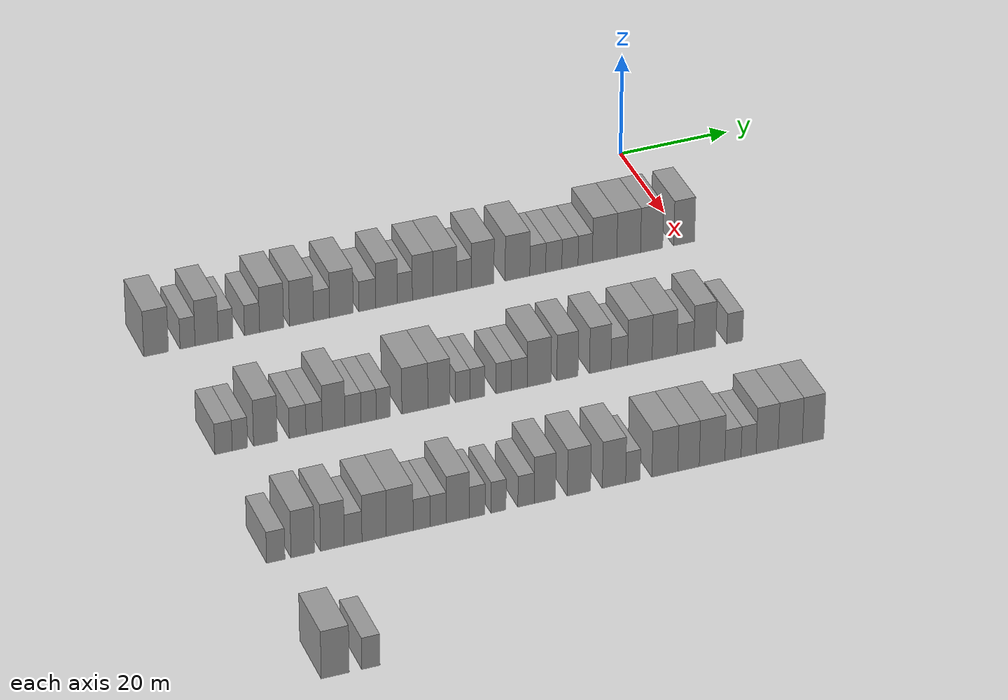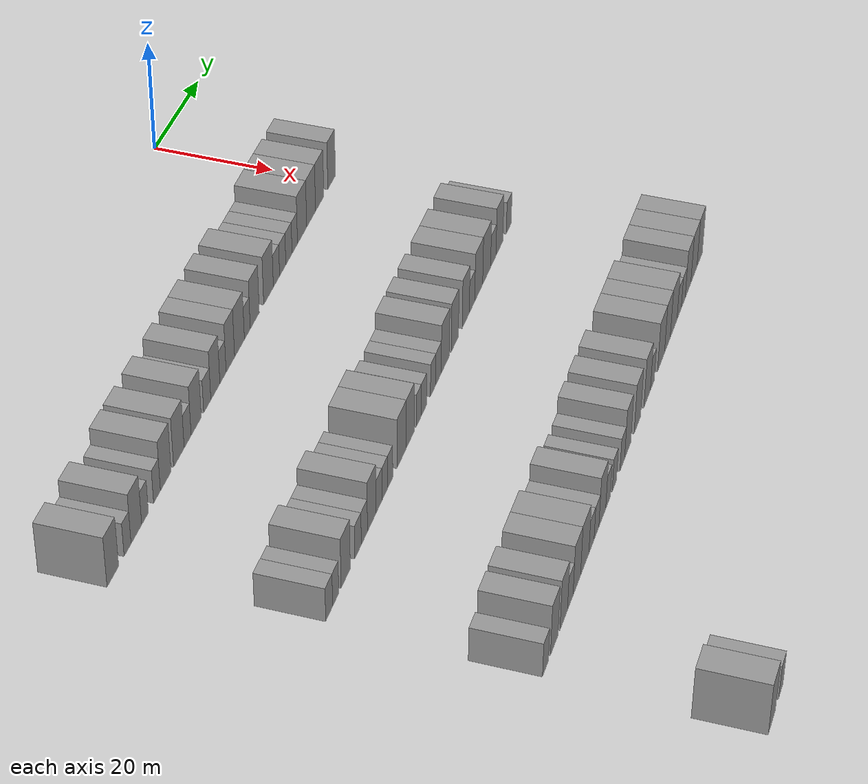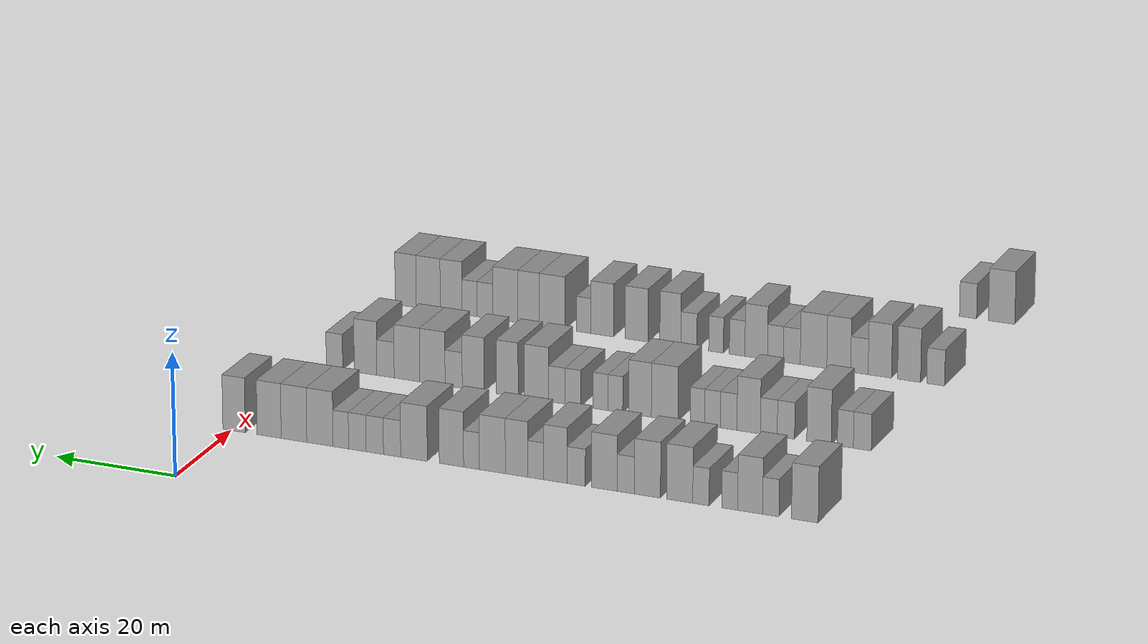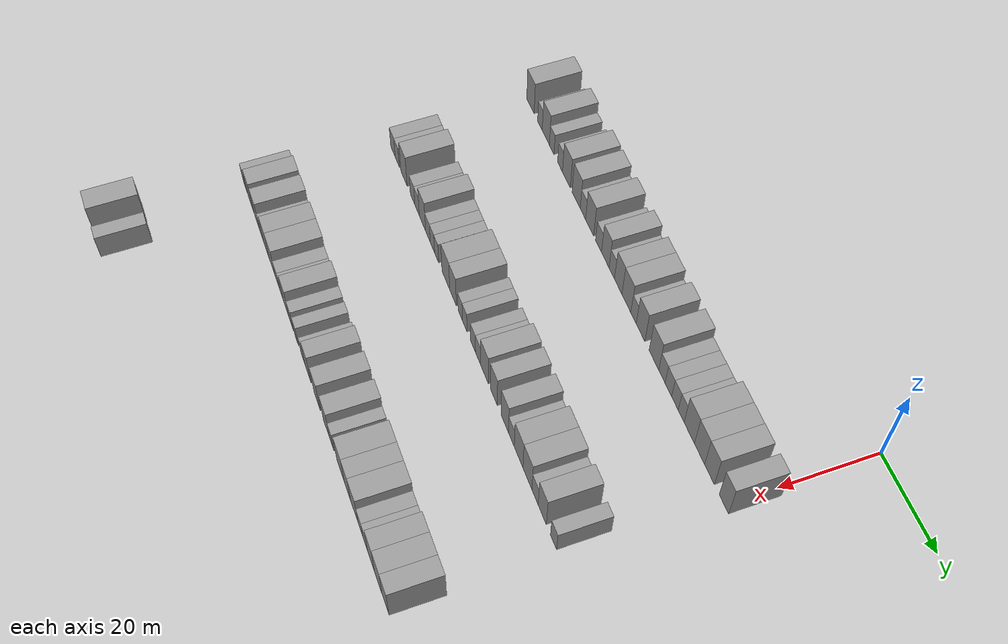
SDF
<sdf version="1.6">
 <world name="default">
  <model name="building_91">
   <static>1</static>
   <pose>25.0000 -94.2348 0 0.000000 0.000000 0.000000</pose>
   <link name="link">
    <pose>0 0 4.50 0 0 0</pose>
    <collision name="collision"><geometry><box><size>10.0000 4.2460 9.0000</size></box></geometry></collision>
    <visual name="visual">
     <cast_shadows>0</cast_shadows>
     <geometry><box><size>10.0000 4.2460 9.0000</size></box></geometry>
     <material>
      <script>
       <uri>model://grey_wall/materials/scripts</uri>
       <uri>model://grey_wall/materials/textures</uri>
       <name>vrc/grey_wall</name>
      </script>
     </material>
    </visual>
   </link>
  </model>
  <model name="building_92">
   <static>1</static>
   <pose>25.0000 -88.8153 0 0.000000 0.000000 0.000000</pose>
   <link name="link">
    <pose>0 0 3.00 0 0 0</pose>
    <collision name="collision"><geometry><box><size>10.0000 2.5929 6.0000</size></box></geometry></collision>
    <visual name="visual">
     <cast_shadows>0</cast_shadows>
     <geometry><box><size>10.0000 2.5929 6.0000</size></box></geometry>
     <material>
      <script>
       <uri>model://grey_wall/materials/scripts</uri>
       <uri>model://grey_wall/materials/textures</uri>
       <name>vrc/grey_wall</name>
      </script>
     </material>
    </visual>
   </link>
  </model>
  <model name="building_93">
   <static>1</static>
   <pose>25.0000 -85.5175 0 0.000000 0.000000 0.000000</pose>
   <link name="link">
    <pose>0 0 4.50 0 0 0</pose>
    <collision name="collision"><geometry><box><size>10.0000 4.0028 9.0000</size></box></geometry></collision>
    <visual name="visual">
     <cast_shadows>0</cast_shadows>
     <geometry><box><size>10.0000 4.0028 9.0000</size></box></geometry>
     <material>
      <script>
       <uri>model://grey_wall/materials/scripts</uri>
       <uri>model://grey_wall/materials/textures</uri>
       <name>vrc/grey_wall</name>
      </script>
     </material>
    </visual>
   </link>
  </model>
  <model name="building_94">
   <static>1</static>
   <pose>25.0000 -82.2333 0 0.000000 0.000000 0.000000</pose>
   <link name="link">
    <pose>0 0 3.00 0 0 0</pose>
    <collision name="collision"><geometry><box><size>10.0000 2.5656 6.0000</size></box></geometry></collision>
    <visual name="visual">
     <cast_shadows>0</cast_shadows>
     <geometry><box><size>10.0000 2.5656 6.0000</size></box></geometry>
     <material>
      <script>
       <uri>model://grey_wall/materials/scripts</uri>
       <uri>model://grey_wall/materials/textures</uri>
       <name>vrc/grey_wall</name>
      </script>
     </material>
    </visual>
   </link>
  </model>
  <model name="building_95">
   <static>1</static>
   <pose>25.0000 -77.6310 0 0.000000 0.000000 0.000000</pose>
   <link name="link">
    <pose>0 0 3.00 0 0 0</pose>
    <collision name="collision"><geometry><box><size>10.0000 2.6391 6.0000</size></box></geometry></collision>
    <visual name="visual">
     <cast_shadows>0</cast_shadows>
     <geometry><box><size>10.0000 2.6391 6.0000</size></box></geometry>
     <material>
      <script>
       <uri>model://grey_wall/materials/scripts</uri>
       <uri>model://grey_wall/materials/textures</uri>
       <name>vrc/grey_wall</name>
      </script>
     </material>
    </visual>
   </link>
  </model>
  <model name="building_96">
   <static>1</static>
   <pose>25.0000 -74.2137 0 0.000000 0.000000 0.000000</pose>
   <link name="link">
    <pose>0 0 4.50 0 0 0</pose>
    <collision name="collision"><geometry><box><size>10.0000 4.1954 9.0000</size></box></geometry></collision>
    <visual name="visual">
     <cast_shadows>0</cast_shadows>
     <geometry><box><size>10.0000 4.1954 9.0000</size></box></geometry>
     <material>
      <script>
       <uri>model://grey_wall/materials/scripts</uri>
       <uri>model://grey_wall/materials/textures</uri>
       <name>vrc/grey_wall</name>
      </script>
     </material>
    </visual>
   </link>
  </model>
  <model name="building_97">
   <static>1</static>
   <pose>25.0000 -69.0018 0 0.000000 0.000000 0.000000</pose>
   <link name="link">
    <pose>0 0 4.50 0 0 0</pose>
    <collision name="collision"><geometry><box><size>10.0000 4.2284 9.0000</size></box></geometry></collision>
    <visual name="visual">
     <cast_shadows>0</cast_shadows>
     <geometry><box><size>10.0000 4.2284 9.0000</size></box></geometry>
     <material>
      <script>
       <uri>model://grey_wall/materials/scripts</uri>
       <uri>model://grey_wall/materials/textures</uri>
       <name>vrc/grey_wall</name>
      </script>
     </material>
    </visual>
   </link>
  </model>
  <model name="building_98">
   <static>1</static>
   <pose>25.0000 -65.4778 0 0.000000 0.000000 0.000000</pose>
   <link name="link">
    <pose>0 0 3.00 0 0 0</pose>
    <collision name="collision"><geometry><box><size>10.0000 2.8197 6.0000</size></box></geometry></collision>
    <visual name="visual">
     <cast_shadows>0</cast_shadows>
     <geometry><box><size>10.0000 2.8197 6.0000</size></box></geometry>
     <material>
      <script>
       <uri>model://grey_wall/materials/scripts</uri>
       <uri>model://grey_wall/materials/textures</uri>
       <name>vrc/grey_wall</name>
      </script>
     </material>
    </visual>
   </link>
  </model>
  <model name="building_99">
   <static>1</static>
   <pose>25.0000 -61.9923 0 0.000000 0.000000 0.000000</pose>
   <link name="link">
    <pose>0 0 4.50 0 0 0</pose>
    <collision name="collision"><geometry><box><size>10.0000 4.1512 9.0000</size></box></geometry></collision>
    <visual name="visual">
     <cast_shadows>0</cast_shadows>
     <geometry><box><size>10.0000 4.1512 9.0000</size></box></geometry>
     <material>
      <script>
       <uri>model://grey_wall/materials/scripts</uri>
       <uri>model://grey_wall/materials/textures</uri>
       <name>vrc/grey_wall</name>
      </script>
     </material>
    </visual>
   </link>
  </model>
  <model name="building_100">
   <static>1</static>
   <pose>25.0000 -57.4266 0 0.000000 0.000000 0.000000</pose>
   <link name="link">
    <pose>0 0 3.00 0 0 0</pose>
    <collision name="collision"><geometry><box><size>10.0000 2.9803 6.0000</size></box></geometry></collision>
    <visual name="visual">
     <cast_shadows>0</cast_shadows>
     <geometry><box><size>10.0000 2.9803 6.0000</size></box></geometry>
     <material>
      <script>
       <uri>model://grey_wall/materials/scripts</uri>
       <uri>model://grey_wall/materials/textures</uri>
       <name>vrc/grey_wall</name>
      </script>
     </material>
    </visual>
   </link>
  </model>
  <model name="building_101">
   <static>1</static>
   <pose>25.0000 -54.0242 0 0.000000 0.000000 0.000000</pose>
   <link name="link">
    <pose>0 0 4.50 0 0 0</pose>
    <collision name="collision"><geometry><box><size>10.0000 3.8244 9.0000</size></box></geometry></collision>
    <visual name="visual">
     <cast_shadows>0</cast_shadows>
     <geometry><box><size>10.0000 3.8244 9.0000</size></box></geometry>
     <material>
      <script>
       <uri>model://grey_wall/materials/scripts</uri>
       <uri>model://grey_wall/materials/textures</uri>
       <name>vrc/grey_wall</name>
      </script>
     </material>
    </visual>
   </link>
  </model>
  <model name="building_102">
   <static>1</static>
   <pose>25.0000 -50.7877 0 0.000000 0.000000 0.000000</pose>
   <link name="link">
    <pose>0 0 3.00 0 0 0</pose>
    <collision name="collision"><geometry><box><size>10.0000 2.6485 6.0000</size></box></geometry></collision>
    <visual name="visual">
     <cast_shadows>0</cast_shadows>
     <geometry><box><size>10.0000 2.6485 6.0000</size></box></geometry>
     <material>
      <script>
       <uri>model://grey_wall/materials/scripts</uri>
       <uri>model://grey_wall/materials/textures</uri>
       <name>vrc/grey_wall</name>
      </script>
     </material>
    </visual>
   </link>
  </model>
  <model name="building_103">
   <static>1</static>
   <pose>25.0000 -47.6280 0 0.000000 0.000000 0.000000</pose>
   <link name="link">
    <pose>0 0 4.50 0 0 0</pose>
    <collision name="collision"><geometry><box><size>10.0000 3.6710 9.0000</size></box></geometry></collision>
    <visual name="visual">
     <cast_shadows>0</cast_shadows>
     <geometry><box><size>10.0000 3.6710 9.0000</size></box></geometry>
     <material>
      <script>
       <uri>model://grey_wall/materials/scripts</uri>
       <uri>model://grey_wall/materials/textures</uri>
       <name>vrc/grey_wall</name>
      </script>
     </material>
    </visual>
   </link>
  </model>
  <model name="building_104">
   <static>1</static>
   <pose>25.0000 -43.6523 0 0.000000 0.000000 0.000000</pose>
   <link name="link">
    <pose>0 0 4.50 0 0 0</pose>
    <collision name="collision"><geometry><box><size>10.0000 4.2803 9.0000</size></box></geometry></collision>
    <visual name="visual">
     <cast_shadows>0</cast_shadows>
     <geometry><box><size>10.0000 4.2803 9.0000</size></box></geometry>
     <material>
      <script>
       <uri>model://grey_wall/materials/scripts</uri>
       <uri>model://grey_wall/materials/textures</uri>
       <name>vrc/grey_wall</name>
      </script>
     </material>
    </visual>
   </link>
  </model>
  <model name="building_105">
   <static>1</static>
   <pose>25.0000 -40.2181 0 0.000000 0.000000 0.000000</pose>
   <link name="link">
    <pose>0 0 3.00 0 0 0</pose>
    <collision name="collision"><geometry><box><size>10.0000 2.5882 6.0000</size></box></geometry></collision>
    <visual name="visual">
     <cast_shadows>0</cast_shadows>
     <geometry><box><size>10.0000 2.5882 6.0000</size></box></geometry>
     <material>
      <script>
       <uri>model://grey_wall/materials/scripts</uri>
       <uri>model://grey_wall/materials/textures</uri>
       <name>vrc/grey_wall</name>
      </script>
     </material>
    </visual>
   </link>
  </model>
  <model name="building_106">
   <static>1</static>
   <pose>25.0000 -36.9056 0 0.000000 0.000000 0.000000</pose>
   <link name="link">
    <pose>0 0 4.50 0 0 0</pose>
    <collision name="collision"><geometry><box><size>10.0000 4.0369 9.0000</size></box></geometry></collision>
    <visual name="visual">
     <cast_shadows>0</cast_shadows>
     <geometry><box><size>10.0000 4.0369 9.0000</size></box></geometry>
     <material>
      <script>
       <uri>model://grey_wall/materials/scripts</uri>
       <uri>model://grey_wall/materials/textures</uri>
       <name>vrc/grey_wall</name>
      </script>
     </material>
    </visual>
   </link>
  </model>
  <model name="building_107">
   <static>1</static>
   <pose>25.0000 -30.6766 0 0.000000 0.000000 0.000000</pose>
   <link name="link">
    <pose>0 0 4.50 0 0 0</pose>
    <collision name="collision"><geometry><box><size>10.0000 4.4210 9.0000</size></box></geometry></collision>
    <visual name="visual">
     <cast_shadows>0</cast_shadows>
     <geometry><box><size>10.0000 4.4210 9.0000</size></box></geometry>
     <material>
      <script>
       <uri>model://grey_wall/materials/scripts</uri>
       <uri>model://grey_wall/materials/textures</uri>
       <name>vrc/grey_wall</name>
      </script>
     </material>
    </visual>
   </link>
  </model>
  <model name="building_108">
   <static>1</static>
   <pose>25.0000 -27.0266 0 0.000000 0.000000 0.000000</pose>
   <link name="link">
    <pose>0 0 3.00 0 0 0</pose>
    <collision name="collision"><geometry><box><size>10.0000 2.8790 6.0000</size></box></geometry></collision>
    <visual name="visual">
     <cast_shadows>0</cast_shadows>
     <geometry><box><size>10.0000 2.8790 6.0000</size></box></geometry>
     <material>
      <script>
       <uri>model://grey_wall/materials/scripts</uri>
       <uri>model://grey_wall/materials/textures</uri>
       <name>vrc/grey_wall</name>
      </script>
     </material>
    </visual>
   </link>
  </model>
  <model name="building_109">
   <static>1</static>
   <pose>25.0000 -24.1309 0 0.000000 0.000000 0.000000</pose>
   <link name="link">
    <pose>0 0 3.00 0 0 0</pose>
    <collision name="collision"><geometry><box><size>10.0000 2.9124 6.0000</size></box></geometry></collision>
    <visual name="visual">
     <cast_shadows>0</cast_shadows>
     <geometry><box><size>10.0000 2.9124 6.0000</size></box></geometry>
     <material>
      <script>
       <uri>model://grey_wall/materials/scripts</uri>
       <uri>model://grey_wall/materials/textures</uri>
       <name>vrc/grey_wall</name>
      </script>
     </material>
    </visual>
   </link>
  </model>
  <model name="building_110">
   <static>1</static>
   <pose>25.0000 -21.2109 0 0.000000 0.000000 0.000000</pose>
   <link name="link">
    <pose>0 0 3.00 0 0 0</pose>
    <collision name="collision"><geometry><box><size>10.0000 2.9277 6.0000</size></box></geometry></collision>
    <visual name="visual">
     <cast_shadows>0</cast_shadows>
     <geometry><box><size>10.0000 2.9277 6.0000</size></box></geometry>
     <material>
      <script>
       <uri>model://grey_wall/materials/scripts</uri>
       <uri>model://grey_wall/materials/textures</uri>
       <name>vrc/grey_wall</name>
      </script>
     </material>
    </visual>
   </link>
  </model>
  <model name="building_111">
   <static>1</static>
   <pose>25.0000 -18.4468 0 0.000000 0.000000 0.000000</pose>
   <link name="link">
    <pose>0 0 3.00 0 0 0</pose>
    <collision name="collision"><geometry><box><size>10.0000 2.6004 6.0000</size></box></geometry></collision>
    <visual name="visual">
     <cast_shadows>0</cast_shadows>
     <geometry><box><size>10.0000 2.6004 6.0000</size></box></geometry>
     <material>
      <script>
       <uri>model://grey_wall/materials/scripts</uri>
       <uri>model://grey_wall/materials/textures</uri>
       <name>vrc/grey_wall</name>
      </script>
     </material>
    </visual>
   </link>
  </model>
  <model name="building_112">
   <static>1</static>
   <pose>25.0000 -14.9306 0 0.000000 0.000000 0.000000</pose>
   <link name="link">
    <pose>0 0 4.50 0 0 0</pose>
    <collision name="collision"><geometry><box><size>10.0000 4.4321 9.0000</size></box></geometry></collision>
    <visual name="visual">
     <cast_shadows>0</cast_shadows>
     <geometry><box><size>10.0000 4.4321 9.0000</size></box></geometry>
     <material>
      <script>
       <uri>model://grey_wall/materials/scripts</uri>
       <uri>model://grey_wall/materials/textures</uri>
       <name>vrc/grey_wall</name>
      </script>
     </material>
    </visual>
   </link>
  </model>
  <model name="building_113">
   <static>1</static>
   <pose>25.0000 -10.5578 0 0.000000 0.000000 0.000000</pose>
   <link name="link">
    <pose>0 0 4.50 0 0 0</pose>
    <collision name="collision"><geometry><box><size>10.0000 4.3134 9.0000</size></box></geometry></collision>
    <visual name="visual">
     <cast_shadows>0</cast_shadows>
     <geometry><box><size>10.0000 4.3134 9.0000</size></box></geometry>
     <material>
      <script>
       <uri>model://grey_wall/materials/scripts</uri>
       <uri>model://grey_wall/materials/textures</uri>
       <name>vrc/grey_wall</name>
      </script>
     </material>
    </visual>
   </link>
  </model>
  <model name="building_114">
   <static>1</static>
   <pose>25.0000 -6.3691 0 0.000000 0.000000 0.000000</pose>
   <link name="link">
    <pose>0 0 4.50 0 0 0</pose>
    <collision name="collision"><geometry><box><size>10.0000 4.0641 9.0000</size></box></geometry></collision>
    <visual name="visual">
     <cast_shadows>0</cast_shadows>
     <geometry><box><size>10.0000 4.0641 9.0000</size></box></geometry>
     <material>
      <script>
       <uri>model://grey_wall/materials/scripts</uri>
       <uri>model://grey_wall/materials/textures</uri>
       <name>vrc/grey_wall</name>
      </script>
     </material>
    </visual>
   </link>
  </model>
  <model name="building_115">
   <static>1</static>
   <pose>25.0000 -0.4222 0 0.000000 0.000000 0.000000</pose>
   <link name="link">
    <pose>0 0 4.50 0 0 0</pose>
    <collision name="collision"><geometry><box><size>10.0000 3.8298 9.0000</size></box></geometry></collision>
    <visual name="visual">
     <cast_shadows>0</cast_shadows>
     <geometry><box><size>10.0000 3.8298 9.0000</size></box></geometry>
     <material>
      <script>
       <uri>model://grey_wall/materials/scripts</uri>
       <uri>model://grey_wall/materials/textures</uri>
       <name>vrc/grey_wall</name>
      </script>
     </material>
    </visual>
   </link>
  </model>
  <model name="building_328">
   <static>1</static>
   <pose>55.0000 -92.4105 0 0.000000 0.000000 0.000000</pose>
   <link name="link">
    <pose>0 0 3.00 0 0 0</pose>
    <collision name="collision"><geometry><box><size>10.0000 2.9233 6.0000</size></box></geometry></collision>
    <visual name="visual">
     <cast_shadows>0</cast_shadows>
     <geometry><box><size>10.0000 2.9233 6.0000</size></box></geometry>
     <material>
      <script>
       <uri>model://grey_wall/materials/scripts</uri>
       <uri>model://grey_wall/materials/textures</uri>
       <name>vrc/grey_wall</name>
      </script>
     </material>
    </visual>
   </link>
  </model>
  <model name="building_329">
   <static>1</static>
   <pose>55.0000 -89.6505 0 0.000000 0.000000 0.000000</pose>
   <link name="link">
    <pose>0 0 3.00 0 0 0</pose>
    <collision name="collision"><geometry><box><size>10.0000 2.5967 6.0000</size></box></geometry></collision>
    <visual name="visual">
     <cast_shadows>0</cast_shadows>
     <geometry><box><size>10.0000 2.5967 6.0000</size></box></geometry>
     <material>
      <script>
       <uri>model://grey_wall/materials/scripts</uri>
       <uri>model://grey_wall/materials/textures</uri>
       <name>vrc/grey_wall</name>
      </script>
     </material>
    </visual>
   </link>
  </model>
  <model name="building_330">
   <static>1</static>
   <pose>55.0000 -85.3474 0 0.000000 0.000000 0.000000</pose>
   <link name="link">
    <pose>0 0 4.50 0 0 0</pose>
    <collision name="collision"><geometry><box><size>10.0000 4.0094 9.0000</size></box></geometry></collision>
    <visual name="visual">
     <cast_shadows>0</cast_shadows>
     <geometry><box><size>10.0000 4.0094 9.0000</size></box></geometry>
     <material>
      <script>
       <uri>model://grey_wall/materials/scripts</uri>
       <uri>model://grey_wall/materials/textures</uri>
       <name>vrc/grey_wall</name>
      </script>
     </material>
    </visual>
   </link>
  </model>
  <model name="building_331">
   <static>1</static>
   <pose>55.0000 -79.9181 0 0.000000 0.000000 0.000000</pose>
   <link name="link">
    <pose>0 0 3.00 0 0 0</pose>
    <collision name="collision"><geometry><box><size>10.0000 2.8491 6.0000</size></box></geometry></collision>
    <visual name="visual">
     <cast_shadows>0</cast_shadows>
     <geometry><box><size>10.0000 2.8491 6.0000</size></box></geometry>
     <material>
      <script>
       <uri>model://grey_wall/materials/scripts</uri>
       <uri>model://grey_wall/materials/textures</uri>
       <name>vrc/grey_wall</name>
      </script>
     </material>
    </visual>
   </link>
  </model>
  <model name="building_332">
   <static>1</static>
   <pose>55.0000 -77.1131 0 0.000000 0.000000 0.000000</pose>
   <link name="link">
    <pose>0 0 3.00 0 0 0</pose>
    <collision name="collision"><geometry><box><size>10.0000 2.7609 6.0000</size></box></geometry></collision>
    <visual name="visual">
     <cast_shadows>0</cast_shadows>
     <geometry><box><size>10.0000 2.7609 6.0000</size></box></geometry>
     <material>
      <script>
       <uri>model://grey_wall/materials/scripts</uri>
       <uri>model://grey_wall/materials/textures</uri>
       <name>vrc/grey_wall</name>
      </script>
     </material>
    </visual>
   </link>
  </model>
  <model name="building_333">
   <static>1</static>
   <pose>55.0000 -73.8008 0 0.000000 0.000000 0.000000</pose>
   <link name="link">
    <pose>0 0 4.50 0 0 0</pose>
    <collision name="collision"><geometry><box><size>10.0000 3.8637 9.0000</size></box></geometry></collision>
    <visual name="visual">
     <cast_shadows>0</cast_shadows>
     <geometry><box><size>10.0000 3.8637 9.0000</size></box></geometry>
     <material>
      <script>
       <uri>model://grey_wall/materials/scripts</uri>
       <uri>model://grey_wall/materials/textures</uri>
       <name>vrc/grey_wall</name>
      </script>
     </material>
    </visual>
   </link>
  </model>
  <model name="building_334">
   <static>1</static>
   <pose>55.0000 -70.4928 0 0.000000 0.000000 0.000000</pose>
   <link name="link">
    <pose>0 0 3.00 0 0 0</pose>
    <collision name="collision"><geometry><box><size>10.0000 2.7524 6.0000</size></box></geometry></collision>
    <visual name="visual">
     <cast_shadows>0</cast_shadows>
     <geometry><box><size>10.0000 2.7524 6.0000</size></box></geometry>
     <material>
      <script>
       <uri>model://grey_wall/materials/scripts</uri>
       <uri>model://grey_wall/materials/textures</uri>
       <name>vrc/grey_wall</name>
      </script>
     </material>
    </visual>
   </link>
  </model>
  <model name="building_335">
   <static>1</static>
   <pose>55.0000 -67.8206 0 0.000000 0.000000 0.000000</pose>
   <link name="link">
    <pose>0 0 3.00 0 0 0</pose>
    <collision name="collision"><geometry><box><size>10.0000 2.5920 6.0000</size></box></geometry></collision>
    <visual name="visual">
     <cast_shadows>0</cast_shadows>
     <geometry><box><size>10.0000 2.5920 6.0000</size></box></geometry>
     <material>
      <script>
       <uri>model://grey_wall/materials/scripts</uri>
       <uri>model://grey_wall/materials/textures</uri>
       <name>vrc/grey_wall</name>
      </script>
     </material>
    </visual>
   </link>
  </model>
  <model name="building_336">
   <static>1</static>
   <pose>55.0000 -65.3233 0 0.000000 0.000000 0.000000</pose>
   <link name="link">
    <pose>0 0 3.00 0 0 0</pose>
    <collision name="collision"><geometry><box><size>10.0000 2.4025 6.0000</size></box></geometry></collision>
    <visual name="visual">
     <cast_shadows>0</cast_shadows>
     <geometry><box><size>10.0000 2.4025 6.0000</size></box></geometry>
     <material>
      <script>
       <uri>model://grey_wall/materials/scripts</uri>
       <uri>model://grey_wall/materials/textures</uri>
       <name>vrc/grey_wall</name>
      </script>
     </material>
    </visual>
   </link>
  </model>
  <model name="building_337">
   <static>1</static>
   <pose>55.0000 -59.8898 0 0.000000 0.000000 0.000000</pose>
   <link name="link">
    <pose>0 0 4.50 0 0 0</pose>
    <collision name="collision"><geometry><box><size>10.0000 4.4645 9.0000</size></box></geometry></collision>
    <visual name="visual">
     <cast_shadows>0</cast_shadows>
     <geometry><box><size>10.0000 4.4645 9.0000</size></box></geometry>
     <material>
      <script>
       <uri>model://grey_wall/materials/scripts</uri>
       <uri>model://grey_wall/materials/textures</uri>
       <name>vrc/grey_wall</name>
      </script>
     </material>
    </visual>
   </link>
  </model>
  <model name="building_338">
   <static>1</static>
   <pose>55.0000 -55.7639 0 0.000000 0.000000 0.000000</pose>
   <link name="link">
    <pose>0 0 4.50 0 0 0</pose>
    <collision name="collision"><geometry><box><size>10.0000 3.7873 9.0000</size></box></geometry></collision>
    <visual name="visual">
     <cast_shadows>0</cast_shadows>
     <geometry><box><size>10.0000 3.7873 9.0000</size></box></geometry>
     <material>
      <script>
       <uri>model://grey_wall/materials/scripts</uri>
       <uri>model://grey_wall/materials/textures</uri>
       <name>vrc/grey_wall</name>
      </script>
     </material>
    </visual>
   </link>
  </model>
  <model name="building_339">
   <static>1</static>
   <pose>55.0000 -51.6499 0 0.000000 0.000000 0.000000</pose>
   <link name="link">
    <pose>0 0 3.00 0 0 0</pose>
    <collision name="collision"><geometry><box><size>10.0000 2.4407 6.0000</size></box></geometry></collision>
    <visual name="visual">
     <cast_shadows>0</cast_shadows>
     <geometry><box><size>10.0000 2.4407 6.0000</size></box></geometry>
     <material>
      <script>
       <uri>model://grey_wall/materials/scripts</uri>
       <uri>model://grey_wall/materials/textures</uri>
       <name>vrc/grey_wall</name>
      </script>
     </material>
    </visual>
   </link>
  </model>
  <model name="building_340">
   <static>1</static>
   <pose>55.0000 -49.1489 0 0.000000 0.000000 0.000000</pose>
   <link name="link">
    <pose>0 0 3.00 0 0 0</pose>
    <collision name="collision"><geometry><box><size>10.0000 2.5612 6.0000</size></box></geometry></collision>
    <visual name="visual">
     <cast_shadows>0</cast_shadows>
     <geometry><box><size>10.0000 2.5612 6.0000</size></box></geometry>
     <material>
      <script>
       <uri>model://grey_wall/materials/scripts</uri>
       <uri>model://grey_wall/materials/textures</uri>
       <name>vrc/grey_wall</name>
      </script>
     </material>
    </visual>
   </link>
  </model>
  <model name="building_341">
   <static>1</static>
   <pose>55.0000 -44.5460 0 0.000000 0.000000 0.000000</pose>
   <link name="link">
    <pose>0 0 3.00 0 0 0</pose>
    <collision name="collision"><geometry><box><size>10.0000 2.6445 6.0000</size></box></geometry></collision>
    <visual name="visual">
     <cast_shadows>0</cast_shadows>
     <geometry><box><size>10.0000 2.6445 6.0000</size></box></geometry>
     <material>
      <script>
       <uri>model://grey_wall/materials/scripts</uri>
       <uri>model://grey_wall/materials/textures</uri>
       <name>vrc/grey_wall</name>
      </script>
     </material>
    </visual>
   </link>
  </model>
  <model name="building_342">
   <static>1</static>
   <pose>55.0000 -41.8315 0 0.000000 0.000000 0.000000</pose>
   <link name="link">
    <pose>0 0 3.00 0 0 0</pose>
    <collision name="collision"><geometry><box><size>10.0000 2.7845 6.0000</size></box></geometry></collision>
    <visual name="visual">
     <cast_shadows>0</cast_shadows>
     <geometry><box><size>10.0000 2.7845 6.0000</size></box></geometry>
     <material>
      <script>
       <uri>model://grey_wall/materials/scripts</uri>
       <uri>model://grey_wall/materials/textures</uri>
       <name>vrc/grey_wall</name>
      </script>
     </material>
    </visual>
   </link>
  </model>
  <model name="building_343">
   <static>1</static>
   <pose>55.0000 -38.3516 0 0.000000 0.000000 0.000000</pose>
   <link name="link">
    <pose>0 0 4.50 0 0 0</pose>
    <collision name="collision"><geometry><box><size>10.0000 4.1754 9.0000</size></box></geometry></collision>
    <visual name="visual">
     <cast_shadows>0</cast_shadows>
     <geometry><box><size>10.0000 4.1754 9.0000</size></box></geometry>
     <material>
      <script>
       <uri>model://grey_wall/materials/scripts</uri>
       <uri>model://grey_wall/materials/textures</uri>
       <name>vrc/grey_wall</name>
      </script>
     </material>
    </visual>
   </link>
  </model>
  <model name="building_344">
   <static>1</static>
   <pose>55.0000 -33.3972 0 0.000000 0.000000 0.000000</pose>
   <link name="link">
    <pose>0 0 4.50 0 0 0</pose>
    <collision name="collision"><geometry><box><size>10.0000 3.7335 9.0000</size></box></geometry></collision>
    <visual name="visual">
     <cast_shadows>0</cast_shadows>
     <geometry><box><size>10.0000 3.7335 9.0000</size></box></geometry>
     <material>
      <script>
       <uri>model://grey_wall/materials/scripts</uri>
       <uri>model://grey_wall/materials/textures</uri>
       <name>vrc/grey_wall</name>
      </script>
     </material>
    </visual>
   </link>
  </model>
  <model name="building_345">
   <static>1</static>
   <pose>55.0000 -27.6449 0 0.000000 0.000000 0.000000</pose>
   <link name="link">
    <pose>0 0 4.50 0 0 0</pose>
    <collision name="collision"><geometry><box><size>10.0000 3.7711 9.0000</size></box></geometry></collision>
    <visual name="visual">
     <cast_shadows>0</cast_shadows>
     <geometry><box><size>10.0000 3.7711 9.0000</size></box></geometry>
     <material>
      <script>
       <uri>model://grey_wall/materials/scripts</uri>
       <uri>model://grey_wall/materials/textures</uri>
       <name>vrc/grey_wall</name>
      </script>
     </material>
    </visual>
   </link>
  </model>
  <model name="building_346">
   <static>1</static>
   <pose>55.0000 -24.2952 0 0.000000 0.000000 0.000000</pose>
   <link name="link">
    <pose>0 0 3.00 0 0 0</pose>
    <collision name="collision"><geometry><box><size>10.0000 2.9284 6.0000</size></box></geometry></collision>
    <visual name="visual">
     <cast_shadows>0</cast_shadows>
     <geometry><box><size>10.0000 2.9284 6.0000</size></box></geometry>
     <material>
      <script>
       <uri>model://grey_wall/materials/scripts</uri>
       <uri>model://grey_wall/materials/textures</uri>
       <name>vrc/grey_wall</name>
      </script>
     </material>
    </visual>
   </link>
  </model>
  <model name="building_347">
   <static>1</static>
   <pose>55.0000 -20.6633 0 0.000000 0.000000 0.000000</pose>
   <link name="link">
    <pose>0 0 4.50 0 0 0</pose>
    <collision name="collision"><geometry><box><size>10.0000 4.3354 9.0000</size></box></geometry></collision>
    <visual name="visual">
     <cast_shadows>0</cast_shadows>
     <geometry><box><size>10.0000 4.3354 9.0000</size></box></geometry>
     <material>
      <script>
       <uri>model://grey_wall/materials/scripts</uri>
       <uri>model://grey_wall/materials/textures</uri>
       <name>vrc/grey_wall</name>
      </script>
     </material>
    </visual>
   </link>
  </model>
  <model name="building_348">
   <static>1</static>
   <pose>55.0000 -16.2978 0 0.000000 0.000000 0.000000</pose>
   <link name="link">
    <pose>0 0 4.50 0 0 0</pose>
    <collision name="collision"><geometry><box><size>10.0000 4.3956 9.0000</size></box></geometry></collision>
    <visual name="visual">
     <cast_shadows>0</cast_shadows>
     <geometry><box><size>10.0000 4.3956 9.0000</size></box></geometry>
     <material>
      <script>
       <uri>model://grey_wall/materials/scripts</uri>
       <uri>model://grey_wall/materials/textures</uri>
       <name>vrc/grey_wall</name>
      </script>
     </material>
    </visual>
   </link>
  </model>
  <model name="building_349">
   <static>1</static>
   <pose>55.0000 -12.6005 0 0.000000 0.000000 0.000000</pose>
   <link name="link">
    <pose>0 0 3.00 0 0 0</pose>
    <collision name="collision"><geometry><box><size>10.0000 2.9990 6.0000</size></box></geometry></collision>
    <visual name="visual">
     <cast_shadows>0</cast_shadows>
     <geometry><box><size>10.0000 2.9990 6.0000</size></box></geometry>
     <material>
      <script>
       <uri>model://grey_wall/materials/scripts</uri>
       <uri>model://grey_wall/materials/textures</uri>
       <name>vrc/grey_wall</name>
      </script>
     </material>
    </visual>
   </link>
  </model>
  <model name="building_350">
   <static>1</static>
   <pose>55.0000 -9.1577 0 0.000000 0.000000 0.000000</pose>
   <link name="link">
    <pose>0 0 4.50 0 0 0</pose>
    <collision name="collision"><geometry><box><size>10.0000 3.8865 9.0000</size></box></geometry></collision>
    <visual name="visual">
     <cast_shadows>0</cast_shadows>
     <geometry><box><size>10.0000 3.8865 9.0000</size></box></geometry>
     <material>
      <script>
       <uri>model://grey_wall/materials/scripts</uri>
       <uri>model://grey_wall/materials/textures</uri>
       <name>vrc/grey_wall</name>
      </script>
     </material>
    </visual>
   </link>
  </model>
  <model name="building_351">
   <static>1</static>
   <pose>55.0000 -3.7929 0 0.000000 0.000000 0.000000</pose>
   <link name="link">
    <pose>0 0 3.00 0 0 0</pose>
    <collision name="collision"><geometry><box><size>10.0000 2.8430 6.0000</size></box></geometry></collision>
    <visual name="visual">
     <cast_shadows>0</cast_shadows>
     <geometry><box><size>10.0000 2.8430 6.0000</size></box></geometry>
     <material>
      <script>
       <uri>model://grey_wall/materials/scripts</uri>
       <uri>model://grey_wall/materials/textures</uri>
       <name>vrc/grey_wall</name>
      </script>
     </material>
    </visual>
   </link>
  </model>
  <model name="building_535">
   <static>1</static>
   <pose>85.0000 -93.7131 0 0.000000 0.000000 0.000000</pose>
   <link name="link">
    <pose>0 0 3.00 0 0 0</pose>
    <collision name="collision"><geometry><box><size>10.0000 2.9934 6.0000</size></box></geometry></collision>
    <visual name="visual">
     <cast_shadows>0</cast_shadows>
     <geometry><box><size>10.0000 2.9934 6.0000</size></box></geometry>
     <material>
      <script>
       <uri>model://grey_wall/materials/scripts</uri>
       <uri>model://grey_wall/materials/textures</uri>
       <name>vrc/grey_wall</name>
      </script>
     </material>
    </visual>
   </link>
  </model>
  <model name="building_536">
   <static>1</static>
   <pose>85.0000 -89.2930 0 0.000000 0.000000 0.000000</pose>
   <link name="link">
    <pose>0 0 4.50 0 0 0</pose>
    <collision name="collision"><geometry><box><size>10.0000 3.8470 9.0000</size></box></geometry></collision>
    <visual name="visual">
     <cast_shadows>0</cast_shadows>
     <geometry><box><size>10.0000 3.8470 9.0000</size></box></geometry>
     <material>
      <script>
       <uri>model://grey_wall/materials/scripts</uri>
       <uri>model://grey_wall/materials/textures</uri>
       <name>vrc/grey_wall</name>
      </script>
     </material>
    </visual>
   </link>
  </model>
  <model name="building_537">
   <static>1</static>
   <pose>85.0000 -84.4106 0 0.000000 0.000000 0.000000</pose>
   <link name="link">
    <pose>0 0 4.50 0 0 0</pose>
    <collision name="collision"><geometry><box><size>10.0000 3.9178 9.0000</size></box></geometry></collision>
    <visual name="visual">
     <cast_shadows>0</cast_shadows>
     <geometry><box><size>10.0000 3.9178 9.0000</size></box></geometry>
     <material>
      <script>
       <uri>model://grey_wall/materials/scripts</uri>
       <uri>model://grey_wall/materials/textures</uri>
       <name>vrc/grey_wall</name>
      </script>
     </material>
    </visual>
   </link>
  </model>
  <model name="building_538">
   <static>1</static>
   <pose>85.0000 -80.9941 0 0.000000 0.000000 0.000000</pose>
   <link name="link">
    <pose>0 0 3.00 0 0 0</pose>
    <collision name="collision"><geometry><box><size>10.0000 2.9153 6.0000</size></box></geometry></collision>
    <visual name="visual">
     <cast_shadows>0</cast_shadows>
     <geometry><box><size>10.0000 2.9153 6.0000</size></box></geometry>
     <material>
      <script>
       <uri>model://grey_wall/materials/scripts</uri>
       <uri>model://grey_wall/materials/textures</uri>
       <name>vrc/grey_wall</name>
      </script>
     </material>
    </visual>
   </link>
  </model>
  <model name="building_539">
   <static>1</static>
   <pose>85.0000 -77.5295 0 0.000000 0.000000 0.000000</pose>
   <link name="link">
    <pose>0 0 4.50 0 0 0</pose>
    <collision name="collision"><geometry><box><size>10.0000 4.0139 9.0000</size></box></geometry></collision>
    <visual name="visual">
     <cast_shadows>0</cast_shadows>
     <geometry><box><size>10.0000 4.0139 9.0000</size></box></geometry>
     <material>
      <script>
       <uri>model://grey_wall/materials/scripts</uri>
       <uri>model://grey_wall/materials/textures</uri>
       <name>vrc/grey_wall</name>
      </script>
     </material>
    </visual>
   </link>
  </model>
  <model name="building_540">
   <static>1</static>
   <pose>85.0000 -73.2819 0 0.000000 0.000000 0.000000</pose>
   <link name="link">
    <pose>0 0 4.50 0 0 0</pose>
    <collision name="collision"><geometry><box><size>10.0000 4.4813 9.0000</size></box></geometry></collision>
    <visual name="visual">
     <cast_shadows>0</cast_shadows>
     <geometry><box><size>10.0000 4.4813 9.0000</size></box></geometry>
     <material>
      <script>
       <uri>model://grey_wall/materials/scripts</uri>
       <uri>model://grey_wall/materials/textures</uri>
       <name>vrc/grey_wall</name>
      </script>
     </material>
    </visual>
   </link>
  </model>
  <model name="building_541">
   <static>1</static>
   <pose>85.0000 -69.6082 0 0.000000 0.000000 0.000000</pose>
   <link name="link">
    <pose>0 0 3.00 0 0 0</pose>
    <collision name="collision"><geometry><box><size>10.0000 2.8660 6.0000</size></box></geometry></collision>
    <visual name="visual">
     <cast_shadows>0</cast_shadows>
     <geometry><box><size>10.0000 2.8660 6.0000</size></box></geometry>
     <material>
      <script>
       <uri>model://grey_wall/materials/scripts</uri>
       <uri>model://grey_wall/materials/textures</uri>
       <name>vrc/grey_wall</name>
      </script>
     </material>
    </visual>
   </link>
  </model>
  <model name="building_542">
   <static>1</static>
   <pose>85.0000 -66.8449 0 0.000000 0.000000 0.000000</pose>
   <link name="link">
    <pose>0 0 3.00 0 0 0</pose>
    <collision name="collision"><geometry><box><size>10.0000 2.6606 6.0000</size></box></geometry></collision>
    <visual name="visual">
     <cast_shadows>0</cast_shadows>
     <geometry><box><size>10.0000 2.6606 6.0000</size></box></geometry>
     <material>
      <script>
       <uri>model://grey_wall/materials/scripts</uri>
       <uri>model://grey_wall/materials/textures</uri>
       <name>vrc/grey_wall</name>
      </script>
     </material>
    </visual>
   </link>
  </model>
  <model name="building_543">
   <static>1</static>
   <pose>85.0000 -63.5952 0 0.000000 0.000000 0.000000</pose>
   <link name="link">
    <pose>0 0 4.50 0 0 0</pose>
    <collision name="collision"><geometry><box><size>10.0000 3.8387 9.0000</size></box></geometry></collision>
    <visual name="visual">
     <cast_shadows>0</cast_shadows>
     <geometry><box><size>10.0000 3.8387 9.0000</size></box></geometry>
     <material>
      <script>
       <uri>model://grey_wall/materials/scripts</uri>
       <uri>model://grey_wall/materials/textures</uri>
       <name>vrc/grey_wall</name>
      </script>
     </material>
    </visual>
   </link>
  </model>
  <model name="building_544">
   <static>1</static>
   <pose>85.0000 -60.3531 0 0.000000 0.000000 0.000000</pose>
   <link name="link">
    <pose>0 0 3.00 0 0 0</pose>
    <collision name="collision"><geometry><box><size>10.0000 2.6456 6.0000</size></box></geometry></collision>
    <visual name="visual">
     <cast_shadows>0</cast_shadows>
     <geometry><box><size>10.0000 2.6456 6.0000</size></box></geometry>
     <material>
      <script>
       <uri>model://grey_wall/materials/scripts</uri>
       <uri>model://grey_wall/materials/textures</uri>
       <name>vrc/grey_wall</name>
      </script>
     </material>
    </visual>
   </link>
  </model>
  <model name="building_545">
   <static>1</static>
   <pose>85.0000 -56.7680 0 0.000000 0.000000 0.000000</pose>
   <link name="link">
    <pose>0 0 3.00 0 0 0</pose>
    <collision name="collision"><geometry><box><size>10.0000 2.5245 6.0000</size></box></geometry></collision>
    <visual name="visual">
     <cast_shadows>0</cast_shadows>
     <geometry><box><size>10.0000 2.5245 6.0000</size></box></geometry>
     <material>
      <script>
       <uri>model://grey_wall/materials/scripts</uri>
       <uri>model://grey_wall/materials/textures</uri>
       <name>vrc/grey_wall</name>
      </script>
     </material>
    </visual>
   </link>
  </model>
  <model name="building_546">
   <static>1</static>
   <pose>85.0000 -52.1388 0 0.000000 0.000000 0.000000</pose>
   <link name="link">
    <pose>0 0 3.00 0 0 0</pose>
    <collision name="collision"><geometry><box><size>10.0000 2.7340 6.0000</size></box></geometry></collision>
    <visual name="visual">
     <cast_shadows>0</cast_shadows>
     <geometry><box><size>10.0000 2.7340 6.0000</size></box></geometry>
     <material>
      <script>
       <uri>model://grey_wall/materials/scripts</uri>
       <uri>model://grey_wall/materials/textures</uri>
       <name>vrc/grey_wall</name>
      </script>
     </material>
    </visual>
   </link>
  </model>
  <model name="building_547">
   <static>1</static>
   <pose>85.0000 -48.9595 0 0.000000 0.000000 0.000000</pose>
   <link name="link">
    <pose>0 0 4.50 0 0 0</pose>
    <collision name="collision"><geometry><box><size>10.0000 3.6246 9.0000</size></box></geometry></collision>
    <visual name="visual">
     <cast_shadows>0</cast_shadows>
     <geometry><box><size>10.0000 3.6246 9.0000</size></box></geometry>
     <material>
      <script>
       <uri>model://grey_wall/materials/scripts</uri>
       <uri>model://grey_wall/materials/textures</uri>
       <name>vrc/grey_wall</name>
      </script>
     </material>
    </visual>
   </link>
  </model>
  <model name="building_548">
   <static>1</static>
   <pose>85.0000 -43.1726 0 0.000000 0.000000 0.000000</pose>
   <link name="link">
    <pose>0 0 4.50 0 0 0</pose>
    <collision name="collision"><geometry><box><size>10.0000 3.9493 9.0000</size></box></geometry></collision>
    <visual name="visual">
     <cast_shadows>0</cast_shadows>
     <geometry><box><size>10.0000 3.9493 9.0000</size></box></geometry>
     <material>
      <script>
       <uri>model://grey_wall/materials/scripts</uri>
       <uri>model://grey_wall/materials/textures</uri>
       <name>vrc/grey_wall</name>
      </script>
     </material>
    </visual>
   </link>
  </model>
  <model name="building_549">
   <static>1</static>
   <pose>85.0000 -37.2107 0 0.000000 0.000000 0.000000</pose>
   <link name="link">
    <pose>0 0 4.50 0 0 0</pose>
    <collision name="collision"><geometry><box><size>10.0000 3.9744 9.0000</size></box></geometry></collision>
    <visual name="visual">
     <cast_shadows>0</cast_shadows>
     <geometry><box><size>10.0000 3.9744 9.0000</size></box></geometry>
     <material>
      <script>
       <uri>model://grey_wall/materials/scripts</uri>
       <uri>model://grey_wall/materials/textures</uri>
       <name>vrc/grey_wall</name>
      </script>
     </material>
    </visual>
   </link>
  </model>
  <model name="building_550">
   <static>1</static>
   <pose>85.0000 -33.9866 0 0.000000 0.000000 0.000000</pose>
   <link name="link">
    <pose>0 0 3.00 0 0 0</pose>
    <collision name="collision"><geometry><box><size>10.0000 2.4738 6.0000</size></box></geometry></collision>
    <visual name="visual">
     <cast_shadows>0</cast_shadows>
     <geometry><box><size>10.0000 2.4738 6.0000</size></box></geometry>
     <material>
      <script>
       <uri>model://grey_wall/materials/scripts</uri>
       <uri>model://grey_wall/materials/textures</uri>
       <name>vrc/grey_wall</name>
      </script>
     </material>
    </visual>
   </link>
  </model>
  <model name="building_551">
   <static>1</static>
   <pose>85.0000 -28.5258 0 0.000000 0.000000 0.000000</pose>
   <link name="link">
    <pose>0 0 4.50 0 0 0</pose>
    <collision name="collision"><geometry><box><size>10.0000 4.4478 9.0000</size></box></geometry></collision>
    <visual name="visual">
     <cast_shadows>0</cast_shadows>
     <geometry><box><size>10.0000 4.4478 9.0000</size></box></geometry>
     <material>
      <script>
       <uri>model://grey_wall/materials/scripts</uri>
       <uri>model://grey_wall/materials/textures</uri>
       <name>vrc/grey_wall</name>
      </script>
     </material>
    </visual>
   </link>
  </model>
  <model name="building_552">
   <static>1</static>
   <pose>85.0000 -24.4546 0 0.000000 0.000000 0.000000</pose>
   <link name="link">
    <pose>0 0 4.50 0 0 0</pose>
    <collision name="collision"><geometry><box><size>10.0000 3.6946 9.0000</size></box></geometry></collision>
    <visual name="visual">
     <cast_shadows>0</cast_shadows>
     <geometry><box><size>10.0000 3.6946 9.0000</size></box></geometry>
     <material>
      <script>
       <uri>model://grey_wall/materials/scripts</uri>
       <uri>model://grey_wall/materials/textures</uri>
       <name>vrc/grey_wall</name>
      </script>
     </material>
    </visual>
   </link>
  </model>
  <model name="building_553">
   <static>1</static>
   <pose>85.0000 -20.3981 0 0.000000 0.000000 0.000000</pose>
   <link name="link">
    <pose>0 0 4.50 0 0 0</pose>
    <collision name="collision"><geometry><box><size>10.0000 4.4184 9.0000</size></box></geometry></collision>
    <visual name="visual">
     <cast_shadows>0</cast_shadows>
     <geometry><box><size>10.0000 4.4184 9.0000</size></box></geometry>
     <material>
      <script>
       <uri>model://grey_wall/materials/scripts</uri>
       <uri>model://grey_wall/materials/textures</uri>
       <name>vrc/grey_wall</name>
      </script>
     </material>
    </visual>
   </link>
  </model>
  <model name="building_554">
   <static>1</static>
   <pose>85.0000 -16.7844 0 0.000000 0.000000 0.000000</pose>
   <link name="link">
    <pose>0 0 3.00 0 0 0</pose>
    <collision name="collision"><geometry><box><size>10.0000 2.8092 6.0000</size></box></geometry></collision>
    <visual name="visual">
     <cast_shadows>0</cast_shadows>
     <geometry><box><size>10.0000 2.8092 6.0000</size></box></geometry>
     <material>
      <script>
       <uri>model://grey_wall/materials/scripts</uri>
       <uri>model://grey_wall/materials/textures</uri>
       <name>vrc/grey_wall</name>
      </script>
     </material>
    </visual>
   </link>
  </model>
  <model name="building_555">
   <static>1</static>
   <pose>85.0000 -14.0715 0 0.000000 0.000000 0.000000</pose>
   <link name="link">
    <pose>0 0 3.00 0 0 0</pose>
    <collision name="collision"><geometry><box><size>10.0000 2.6165 6.0000</size></box></geometry></collision>
    <visual name="visual">
     <cast_shadows>0</cast_shadows>
     <geometry><box><size>10.0000 2.6165 6.0000</size></box></geometry>
     <material>
      <script>
       <uri>model://grey_wall/materials/scripts</uri>
       <uri>model://grey_wall/materials/textures</uri>
       <name>vrc/grey_wall</name>
      </script>
     </material>
    </visual>
   </link>
  </model>
  <model name="building_556">
   <static>1</static>
   <pose>85.0000 -10.8579 0 0.000000 0.000000 0.000000</pose>
   <link name="link">
    <pose>0 0 4.50 0 0 0</pose>
    <collision name="collision"><geometry><box><size>10.0000 3.8107 9.0000</size></box></geometry></collision>
    <visual name="visual">
     <cast_shadows>0</cast_shadows>
     <geometry><box><size>10.0000 3.8107 9.0000</size></box></geometry>
     <material>
      <script>
       <uri>model://grey_wall/materials/scripts</uri>
       <uri>model://grey_wall/materials/textures</uri>
       <name>vrc/grey_wall</name>
      </script>
     </material>
    </visual>
   </link>
  </model>
  <model name="building_557">
   <static>1</static>
   <pose>85.0000 -6.8442 0 0.000000 0.000000 0.000000</pose>
   <link name="link">
    <pose>0 0 4.50 0 0 0</pose>
    <collision name="collision"><geometry><box><size>10.0000 4.2168 9.0000</size></box></geometry></collision>
    <visual name="visual">
     <cast_shadows>0</cast_shadows>
     <geometry><box><size>10.0000 4.2168 9.0000</size></box></geometry>
     <material>
      <script>
       <uri>model://grey_wall/materials/scripts</uri>
       <uri>model://grey_wall/materials/textures</uri>
       <name>vrc/grey_wall</name>
      </script>
     </material>
    </visual>
   </link>
  </model>
  <model name="building_558">
   <static>1</static>
   <pose>85.0000 -2.8600 0 0.000000 0.000000 0.000000</pose>
   <link name="link">
    <pose>0 0 4.50 0 0 0</pose>
    <collision name="collision"><geometry><box><size>10.0000 3.7515 9.0000</size></box></geometry></collision>
    <visual name="visual">
     <cast_shadows>0</cast_shadows>
     <geometry><box><size>10.0000 3.7515 9.0000</size></box></geometry>
     <material>
      <script>
       <uri>model://grey_wall/materials/scripts</uri>
       <uri>model://grey_wall/materials/textures</uri>
       <name>vrc/grey_wall</name>
      </script>
     </material>
    </visual>
   </link>
  </model>
  <model name="building_758">
   <static>1</static>
   <pose>115.0000 -94.3783 0 0.000000 0.000000 0.000000</pose>
   <link name="link">
    <pose>0 0 4.50 0 0 0</pose>
    <collision name="collision"><geometry><box><size>10.0000 4.4658 9.0000</size></box></geometry></collision>
    <visual name="visual">
     <cast_shadows>0</cast_shadows>
     <geometry><box><size>10.0000 4.4658 9.0000</size></box></geometry>
     <material>
      <script>
       <uri>model://grey_wall/materials/scripts</uri>
       <uri>model://grey_wall/materials/textures</uri>
       <name>vrc/grey_wall</name>
      </script>
     </material>
    </visual>
   </link>
  </model>
  <model name="building_759">
   <static>1</static>
   <pose>115.0000 -88.6832 0 0.000000 0.000000 0.000000</pose>
   <link name="link">
    <pose>0 0 3.00 0 0 0</pose>
    <collision name="collision"><geometry><box><size>10.0000 2.9243 6.0000</size></box></geometry></collision>
    <visual name="visual">
     <cast_shadows>0</cast_shadows>
     <geometry><box><size>10.0000 2.9243 6.0000</size></box></geometry>
     <material>
      <script>
       <uri>model://grey_wall/materials/scripts</uri>
       <uri>model://grey_wall/materials/textures</uri>
       <name>vrc/grey_wall</name>
      </script>
     </material>
    </visual>
   </link>
  </model>
 </world>
</sdf>
